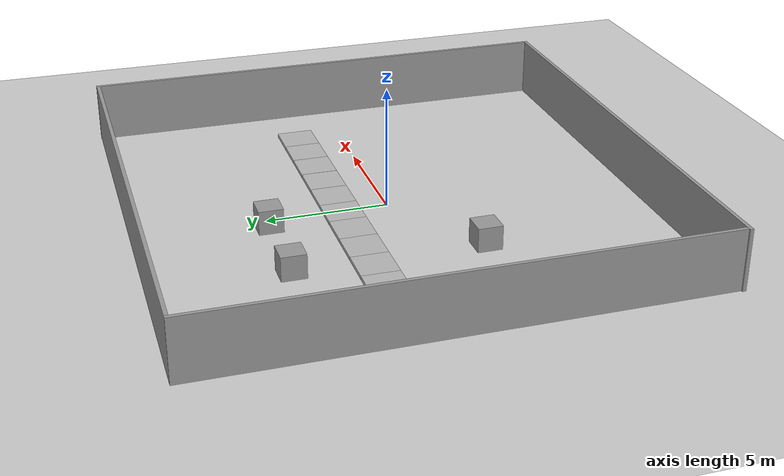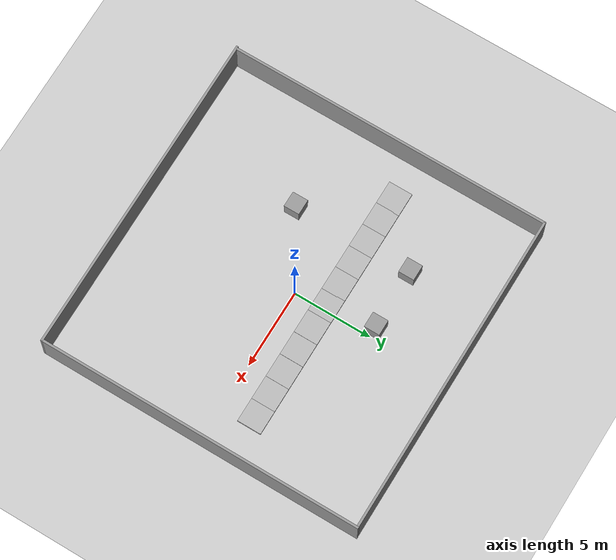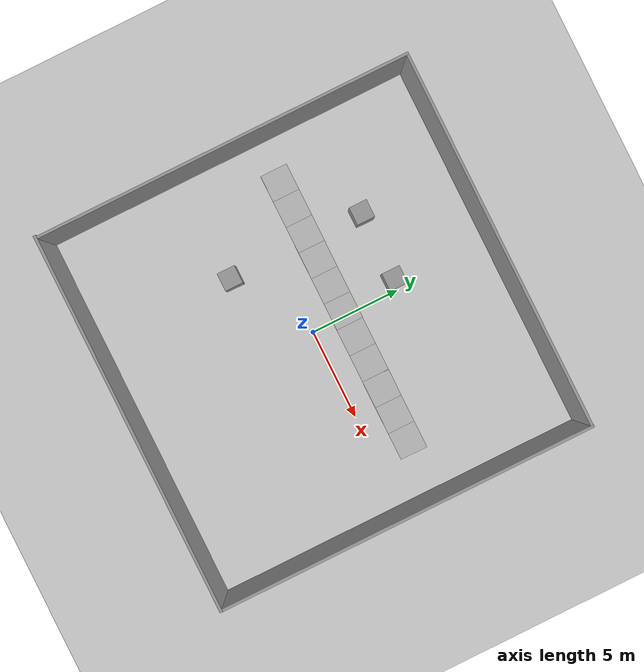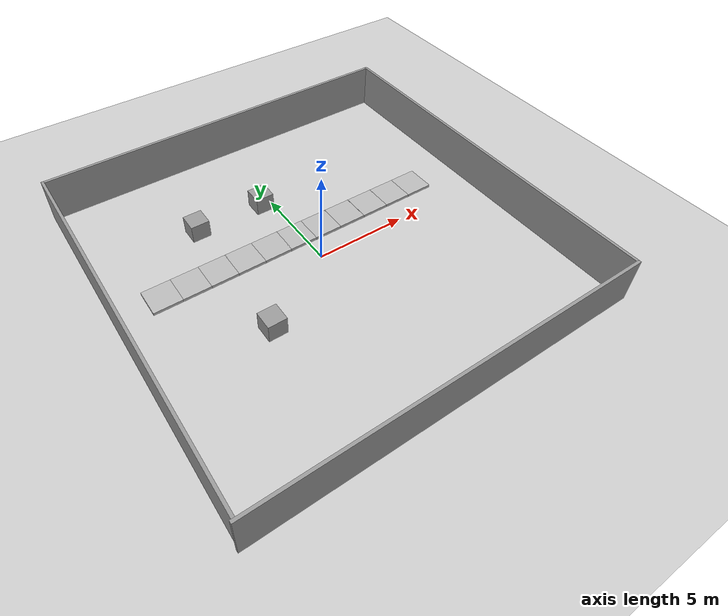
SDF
<sdf version="1.6">
 <world name="default">
  <light name="sun" type="directional">
   <pose>0 0 10 0 -0 0</pose>
   <diffuse>0.8 0.8 0.8 1</diffuse>
   <specular>0.2 0.2 0.2 1</specular>
   <attenuation>
    <range>1000</range>
    <constant>0.9</constant>
    <linear>0.01</linear>
    <quadratic>0.001</quadratic>
   </attenuation>
   <direction>-0.5 0.1 -0.9</direction>
  </light>
  <model name="ground_plane">
   <static>1</static>
   <link name="link">
    <collision name="collision">
     <geometry><plane><normal>0 0 1</normal><size>100 100</size></plane></geometry>
     <surface><friction><ode><mu>100</mu><mu2>50</mu2></ode></friction></surface>
    </collision>
    <visual name="visual">
     <cast_shadows>0</cast_shadows>
     <geometry><plane><normal>0 0 1</normal><size>100 100</size></plane></geometry>
     <material>
      <script><uri>file://media/materials/scripts/gazebo.material</uri><name>Gazebo/Grey</name></script>
     </material>
    </visual>
   </link>
  </model>
  <gravity>0 0 -9.8</gravity>
  <magnetic_field>6e-06 2.3e-05 -4.2e-05</magnetic_field>
  <atmosphere type="adiabatic"/>
  <physics name="default_physics" default="0" type="ode">
   <max_step_size>0.001</max_step_size>
   <real_time_factor>1</real_time_factor>
   <real_time_update_rate>1000</real_time_update_rate>
  </physics>
  <scene><ambient>0.4 0.4 0.4 1</ambient><background>0.7 0.7 0.7 1</background><shadows>1</shadows></scene>
  <spherical_coordinates>
   <surface_model>EARTH_WGS84</surface_model>
   <latitude_deg>0</latitude_deg>
   <longitude_deg>0</longitude_deg>
   <elevation>0</elevation>
   <heading_deg>0</heading_deg>
  </spherical_coordinates>
  <model name="enclosedWalls">
   <pose>0.000237 0.0412 0 0 -0 0</pose>
   <link name="Wall_13">
    <collision name="Wall_13_Collision">
     <geometry><box><size>20.75 0.15 2.5</size></box></geometry>
     <pose>0 0 1.25 0 -0 0</pose>
    </collision>
    <visual name="Wall_13_Visual">
     <pose>0 0 1.25 0 -0 0</pose>
     <geometry><box><size>20.75 0.15 2.5</size></box></geometry>
     <material>
      <script><uri>file://media/materials/scripts/gazebo.material</uri><name>Gazebo/Grey</name></script>
      <ambient>1 1 1 1</ambient>
     </material>
     <meta><layer>0</layer></meta>
    </visual>
    <pose>-0.003832 -10.2353 0 0 -0 0</pose>
   </link>
   <link name="Wall_4">
    <collision name="Wall_4_Collision">
     <geometry><box><size>20.5 0.15 2.5</size></box></geometry>
     <pose>0 0 1.25 0 -0 0</pose>
    </collision>
    <visual name="Wall_4_Visual">
     <pose>0 0 1.25 0 -0 0</pose>
     <geometry><box><size>20.5 0.15 2.5</size></box></geometry>
     <material>
      <script><uri>file://media/materials/scripts/gazebo.material</uri><name>Gazebo/Grey</name></script>
      <ambient>1 1 1 1</ambient>
     </material>
     <meta><layer>0</layer></meta>
    </visual>
    <pose>-10.2348 0.050116 0 0 0 -1.5708</pose>
   </link>
   <link name="Wall_6">
    <collision name="Wall_6_Collision">
     <geometry><box><size>20.5 0.15 2.5</size></box></geometry>
     <pose>0 0 1.25 0 -0 0</pose>
    </collision>
    <visual name="Wall_6_Visual">
     <pose>0 0 1.25 0 -0 0</pose>
     <geometry><box><size>20.5 0.15 2.5</size></box></geometry>
     <material>
      <script><uri>file://media/materials/scripts/gazebo.material</uri><name>Gazebo/Grey</name></script>
      <ambient>1 1 1 1</ambient>
     </material>
     <meta><layer>0</layer></meta>
    </visual>
    <pose>-0.006766 10.2272 0 0 -0 0</pose>
   </link>
   <link name="Wall_8">
    <collision name="Wall_8_Collision">
     <geometry><box><size>20.5 0.15 2.5</size></box></geometry>
     <pose>0 0 1.25 0 -0 0</pose>
    </collision>
    <visual name="Wall_8_Visual">
     <pose>0 0 1.25 0 -0 0</pose>
     <geometry><box><size>20.5 0.15 2.5</size></box></geometry>
     <material>
      <script><uri>file://media/materials/scripts/gazebo.material</uri><name>Gazebo/Grey</name></script>
      <ambient>1 1 1 1</ambient>
     </material>
     <meta><layer>0</layer></meta>
    </visual>
    <pose>10.3038 0.06031 0 0 -0 1.5708</pose>
   </link>
   <static>1</static>
  </model>
  <model name="walkway_metal_straight">
   <static>1</static>
   <link name="link">
    <collision name="collision">
     <pose>0 0.762 0.076075 0 -0 0</pose>
     <geometry><box><size>1.524 1.524 0.15215</size></box></geometry>
    </collision>
    <visual name="visual">
     <geometry>
      <mesh><scale>0.001 0.001 0.001</scale><uri>model://walkway_metal_straight/meshes/mesh.obj</uri></mesh>
     </geometry>
    </visual>
   </link>
   <pose>0.469308 1.92484 0 0 -0 1.5708</pose>
  </model>
  <model name="walkway_metal_straight_clone">
   <static>1</static>
   <link name="link">
    <collision name="collision">
     <pose>0 0.762 0.076075 0 -0 0</pose>
     <geometry><box><size>1.524 1.524 0.15215</size></box></geometry>
    </collision>
    <visual name="visual">
     <geometry>
      <mesh><scale>0.001 0.001 0.001</scale><uri>model://walkway_metal_straight/meshes/mesh.obj</uri></mesh>
     </geometry>
    </visual>
   </link>
   <pose>1.99234 1.92115 0 0 -0 1.5708</pose>
  </model>
  <model name="walkway_metal_straight_clone_0">
   <static>1</static>
   <link name="link">
    <collision name="collision">
     <pose>0 0.762 0.076075 0 -0 0</pose>
     <geometry><box><size>1.524 1.524 0.15215</size></box></geometry>
    </collision>
    <visual name="visual">
     <geometry>
      <mesh><scale>0.001 0.001 0.001</scale><uri>model://walkway_metal_straight/meshes/mesh.obj</uri></mesh>
     </geometry>
    </visual>
   </link>
   <pose>3.51859 1.92036 0 0 -0 1.5708</pose>
  </model>
  <model name="walkway_metal_straight_clone_1">
   <static>1</static>
   <link name="link">
    <collision name="collision">
     <pose>0 0.762 0.076075 0 -0 0</pose>
     <geometry><box><size>1.524 1.524 0.15215</size></box></geometry>
    </collision>
    <visual name="visual">
     <geometry>
      <mesh><scale>0.001 0.001 0.001</scale><uri>model://walkway_metal_straight/meshes/mesh.obj</uri></mesh>
     </geometry>
    </visual>
   </link>
   <pose>5.04796 1.92066 0 0 -0 1.5708</pose>
  </model>
  <model name="walkway_metal_straight_clone_2">
   <static>1</static>
   <link name="link">
    <collision name="collision">
     <pose>0 0.762 0.076075 0 -0 0</pose>
     <geometry><box><size>1.524 1.524 0.15215</size></box></geometry>
    </collision>
    <visual name="visual">
     <geometry>
      <mesh><scale>0.001 0.001 0.001</scale><uri>model://walkway_metal_straight/meshes/mesh.obj</uri></mesh>
     </geometry>
    </visual>
   </link>
   <pose>6.573 1.92153 0 0 -0 1.5708</pose>
  </model>
  <model name="walkway_metal_straight_clone_3">
   <static>1</static>
   <link name="link">
    <collision name="collision">
     <pose>0 0.762 0.076075 0 -0 0</pose>
     <geometry><box><size>1.524 1.524 0.15215</size></box></geometry>
    </collision>
    <visual name="visual">
     <geometry>
      <mesh><scale>0.001 0.001 0.001</scale><uri>model://walkway_metal_straight/meshes/mesh.obj</uri></mesh>
     </geometry>
    </visual>
   </link>
   <pose>-1.0265 1.92537 0 0 -0 1.5708</pose>
  </model>
  <model name="walkway_metal_straight_clone_4">
   <static>1</static>
   <link name="link">
    <collision name="collision">
     <pose>0 0.762 0.076075 0 -0 0</pose>
     <geometry><box><size>1.524 1.524 0.15215</size></box></geometry>
    </collision>
    <visual name="visual">
     <geometry>
      <mesh><scale>0.001 0.001 0.001</scale><uri>model://walkway_metal_straight/meshes/mesh.obj</uri></mesh>
     </geometry>
    </visual>
   </link>
   <pose>-2.54438 1.9261 0 0 -0 1.5708</pose>
  </model>
  <model name="walkway_metal_straight_clone_5">
   <static>1</static>
   <link name="link">
    <collision name="collision">
     <pose>0 0.762 0.076075 0 -0 0</pose>
     <geometry><box><size>1.524 1.524 0.15215</size></box></geometry>
    </collision>
    <visual name="visual">
     <geometry>
      <mesh><scale>0.001 0.001 0.001</scale><uri>model://walkway_metal_straight/meshes/mesh.obj</uri></mesh>
     </geometry>
    </visual>
   </link>
   <pose>-4.04108 1.92695 0 0 -0 1.5708</pose>
  </model>
  <model name="walkway_metal_straight_clone_6">
   <static>1</static>
   <link name="link">
    <collision name="collision">
     <pose>0 0.762 0.076075 0 -0 0</pose>
     <geometry><box><size>1.524 1.524 0.15215</size></box></geometry>
    </collision>
    <visual name="visual">
     <geometry>
      <mesh><scale>0.001 0.001 0.001</scale><uri>model://walkway_metal_straight/meshes/mesh.obj</uri></mesh>
     </geometry>
    </visual>
   </link>
   <pose>-5.55693 1.92651 0 0 -0 1.5708</pose>
  </model>
  <model name="walkway_metal_straight_clone_7">
   <static>1</static>
   <link name="link">
    <collision name="collision">
     <pose>0 0.762 0.076075 0 -0 0</pose>
     <geometry><box><size>1.524 1.524 0.15215</size></box></geometry>
    </collision>
    <visual name="visual">
     <geometry>
      <mesh><scale>0.001 0.001 0.001</scale><uri>model://walkway_metal_straight/meshes/mesh.obj</uri></mesh>
     </geometry>
    </visual>
   </link>
   <pose>-7.04787 1.92731 0 0 -0 1.5708</pose>
  </model>
  <model name="walkway_metal_straight_clone_8">
   <static>1</static>
   <link name="link">
    <collision name="collision">
     <pose>0 0.762 0.076075 0 -0 0</pose>
     <geometry><box><size>1.524 1.524 0.15215</size></box></geometry>
    </collision>
    <visual name="visual">
     <geometry>
      <mesh><scale>0.001 0.001 0.001</scale><uri>model://walkway_metal_straight/meshes/mesh.obj</uri></mesh>
     </geometry>
    </visual>
   </link>
   <pose>8.09113 1.92312 0 0 -0 1.5708</pose>
  </model>
  <model name="Workstation">
   <link name="link_0">
    <pose>4e-06 2e-06 0 0 -0 0</pose>
    <inertial>
     <mass>1</mass>
     <inertia>
      <ixx>0.166667</ixx>
      <ixy>0</ixy>
      <ixz>0</ixz>
      <iyy>0.166667</iyy>
      <iyz>0</iyz>
      <izz>0.166667</izz>
     </inertia>
    </inertial>
    <visual name="visual">
     <geometry><box><size>1 1 1</size></box></geometry>
     <material>
      <lighting>1</lighting>
      <script><uri>file://media/materials/scripts/gazebo.material</uri><name>Gazebo/Grey</name></script>
      <ambient>0.3 0.3 0.3 1</ambient>
      <diffuse>0.7 0.7 0.7 1</diffuse>
      <specular>0.01 0.01 0.01 1</specular>
      <emissive>0 0 0 1</emissive>
     </material>
    </visual>
    <collision name="collision">
     <geometry><box><size>1 1 1</size></box></geometry>
     <surface>
      <friction>
       <ode><mu>1</mu><mu2>1</mu2><fdir1>0 0 0</fdir1><slip1>0</slip1><slip2>0</slip2></ode>
       <torsional>
        <coefficient>1</coefficient>
        <patch_radius>0</patch_radius>
        <surface_radius>0</surface_radius>
        <use_patch_radius>1</use_patch_radius>
        <ode><slip>0</slip></ode>
       </torsional>
      </friction>
      <bounce><restitution_coefficient>0</restitution_coefficient><threshold>1e+06</threshold></bounce>
      <contact>
       <collide_without_contact>0</collide_without_contact>
       <collide_without_contact_bitmask>1</collide_without_contact_bitmask>
       <collide_bitmask>1</collide_bitmask>
       <ode>
        <soft_cfm>0</soft_cfm>
        <soft_erp>0.2</soft_erp>
        <kp>1e+13</kp>
        <kd>1</kd>
        <max_vel>0.01</max_vel>
        <min_depth>0</min_depth>
       </ode>
       <bullet>
        <split_impulse>1</split_impulse>
        <split_impulse_penetration_threshold>-0.01</split_impulse_penetration_threshold>
        <soft_cfm>0</soft_cfm>
        <soft_erp>0.2</soft_erp>
        <kp>1e+13</kp>
        <kd>1</kd>
       </bullet>
      </contact>
     </surface>
    </collision>
   </link>
   <static>0</static>
   <pose>-4.41071 5.00249 0.5 0 0 -1e-06</pose>
  </model>
  <model name="Workstation_clone">
   <link name="link_0">
    <pose>4e-06 2e-06 0 0 -0 0</pose>
    <inertial>
     <mass>1</mass>
     <inertia>
      <ixx>0.166667</ixx>
      <ixy>0</ixy>
      <ixz>0</ixz>
      <iyy>0.166667</iyy>
      <iyz>0</iyz>
      <izz>0.166667</izz>
     </inertia>
    </inertial>
    <visual name="visual">
     <geometry><box><size>1 1 1</size></box></geometry>
     <material>
      <lighting>1</lighting>
      <script><uri>file://media/materials/scripts/gazebo.material</uri><name>Gazebo/Grey</name></script>
      <ambient>0.3 0.3 0.3 1</ambient>
      <diffuse>0.7 0.7 0.7 1</diffuse>
      <specular>0.01 0.01 0.01 1</specular>
      <emissive>0 0 0 1</emissive>
     </material>
    </visual>
    <collision name="collision">
     <geometry><box><size>1 1 1</size></box></geometry>
     <surface>
      <friction>
       <ode><mu>1</mu><mu2>1</mu2><fdir1>0 0 0</fdir1><slip1>0</slip1><slip2>0</slip2></ode>
       <torsional>
        <coefficient>1</coefficient>
        <patch_radius>0</patch_radius>
        <surface_radius>0</surface_radius>
        <use_patch_radius>1</use_patch_radius>
        <ode><slip>0</slip></ode>
       </torsional>
      </friction>
      <bounce><restitution_coefficient>0</restitution_coefficient><threshold>1e+06</threshold></bounce>
      <contact>
       <collide_without_contact>0</collide_without_contact>
       <collide_without_contact_bitmask>1</collide_without_contact_bitmask>
       <collide_bitmask>1</collide_bitmask>
       <ode>
        <soft_cfm>0</soft_cfm>
        <soft_erp>0.2</soft_erp>
        <kp>1e+13</kp>
        <kd>1</kd>
        <max_vel>0.01</max_vel>
        <min_depth>0</min_depth>
       </ode>
       <bullet>
        <split_impulse>1</split_impulse>
        <split_impulse_penetration_threshold>-0.01</split_impulse_penetration_threshold>
        <soft_cfm>0</soft_cfm>
        <soft_erp>0.2</soft_erp>
        <kp>1e+13</kp>
        <kd>1</kd>
       </bullet>
      </contact>
     </surface>
    </collision>
   </link>
   <static>0</static>
   <pose>-0.603195 5.0011 0.499995 0 -1e-05 0</pose>
  </model>
  <model name="Workstation_clone_0">
   <link name="link_0">
    <pose>4e-06 2e-06 0 0 -0 0</pose>
    <inertial>
     <mass>1</mass>
     <inertia>
      <ixx>0.166667</ixx>
      <ixy>0</ixy>
      <ixz>0</ixz>
      <iyy>0.166667</iyy>
      <iyz>0</iyz>
      <izz>0.166667</izz>
     </inertia>
    </inertial>
    <visual name="visual">
     <geometry><box><size>1 1 1</size></box></geometry>
     <material>
      <lighting>1</lighting>
      <script><uri>file://media/materials/scripts/gazebo.material</uri><name>Gazebo/Grey</name></script>
      <ambient>0.3 0.3 0.3 1</ambient>
      <diffuse>0.7 0.7 0.7 1</diffuse>
      <specular>0.01 0.01 0.01 1</specular>
      <emissive>0 0 0 1</emissive>
     </material>
    </visual>
    <collision name="collision">
     <geometry><box><size>1 1 1</size></box></geometry>
     <surface>
      <friction>
       <ode><mu>1</mu><mu2>1</mu2><fdir1>0 0 0</fdir1><slip1>0</slip1><slip2>0</slip2></ode>
       <torsional>
        <coefficient>1</coefficient>
        <patch_radius>0</patch_radius>
        <surface_radius>0</surface_radius>
        <use_patch_radius>1</use_patch_radius>
        <ode><slip>0</slip></ode>
       </torsional>
      </friction>
      <bounce><restitution_coefficient>0</restitution_coefficient><threshold>1e+06</threshold></bounce>
      <contact>
       <collide_without_contact>0</collide_without_contact>
       <collide_without_contact_bitmask>1</collide_without_contact_bitmask>
       <collide_bitmask>1</collide_bitmask>
       <ode>
        <soft_cfm>0</soft_cfm>
        <soft_erp>0.2</soft_erp>
        <kp>1e+13</kp>
        <kd>1</kd>
        <max_vel>0.01</max_vel>
        <min_depth>0</min_depth>
       </ode>
       <bullet>
        <split_impulse>1</split_impulse>
        <split_impulse_penetration_threshold>-0.01</split_impulse_penetration_threshold>
        <soft_cfm>0</soft_cfm>
        <soft_erp>0.2</soft_erp>
        <kp>1e+13</kp>
        <kd>1</kd>
       </bullet>
      </contact>
     </surface>
    </collision>
   </link>
   <static>0</static>
   <pose>-4.39315 -2.60365 0.499995 -1e-05 0 0</pose>
  </model>
 </world>
</sdf>
